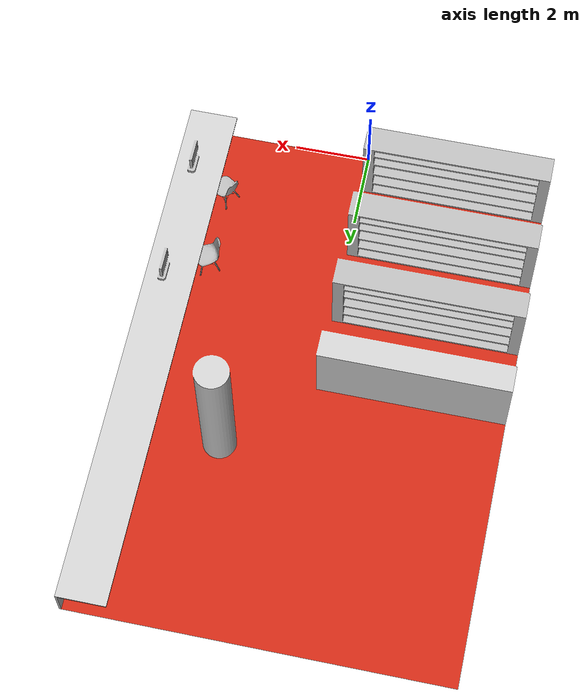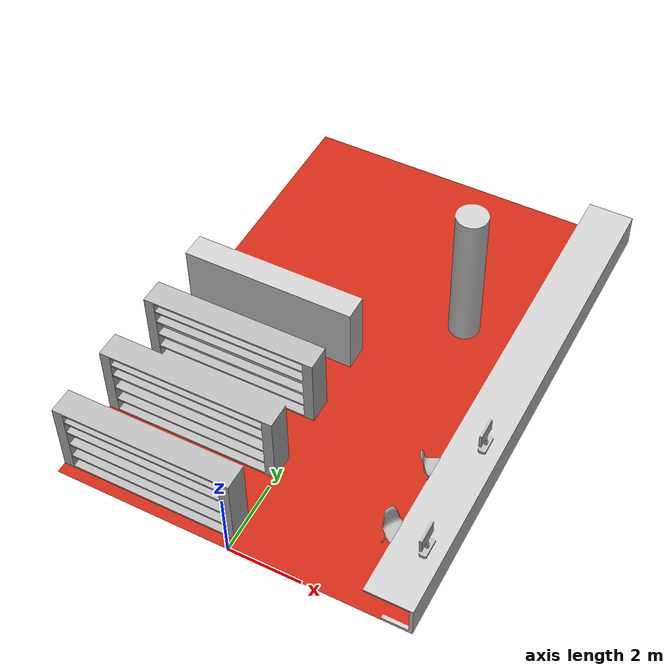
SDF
<?xml version="1.0"?>
<sdf version="1.6">
  <world name="biblioteca">
    <physics type="ode" name="split_unthrottled3">
      <real_time_update_rate>1000.0</real_time_update_rate>
      <max_step_size>0.001</max_step_size>
      <ode>
        <solver>
          <type>quick</type>
          <sor>1.4</sor>
          <thread_position_correction>1</thread_position_correction>
          <island_threads>4</island_threads>
        </solver>
      </ode>
    </physics>
	  <scene>
		  <ambient>1 1 1 1</ambient>
		  <background>0.3 0.7 0.9 1</background>
		  <shadows>0</shadows>
		  <grid>1</grid>
	  </scene>
    <model name="chair1">
      <pose>3.45 2.0 0  0 0 89</pose>
      <static>true</static>
      <link name="body">
        <visual name="visual">
          <geometry>
            <mesh><uri>model://library/chair.dae</uri></mesh>
          </geometry>
        </visual>
        <collision name="collision">
          <geometry>
            <mesh><uri>model://library/chair-collision.dae</uri></mesh>
          </geometry>
        </collision>
      </link>
    </model>
    <model name="chair2">
      <pose>3.45 4.0 0  0 0 90</pose>
      <static>true</static>
      <link name="body">
        <visual name="visual">
          <geometry>
            <mesh><uri>model://library/chair.dae</uri></mesh>
          </geometry>
        </visual>
        <collision name="collision">
          <geometry>
            <mesh><uri>model://library/chair-collision.dae</uri></mesh>
          </geometry>
        </collision>
      </link>
    </model>
    <model name="library">
      <pose>0 0 0  0 0 0</pose>
      <static>true</static>
      <link name="main">
        <visual name="visual">
          <geometry>
            <mesh>
              <uri>model://library/biblioteca.dae</uri>
            </mesh>
          </geometry>
        </visual>
        <collision name="collision">
          <geometry>
            <mesh>
              <uri>model://library/biblioteca-collisioni.dae</uri>
            </mesh>
          </geometry>
        </collision>
      </link>
      <link name="Fan2">
          <pose>5.0154 -0.2952 6.12 0 0 0</pose>
          <light type="directional" name="fan_light">
              <diffuse>1 1 1 1</diffuse>
              <specular>0.3 0.3 0.3 1</specular>
              <attenuation>
                  <range>50</range>
                  <linear>0</linear>
                  <constant>0</constant>
                  <quadratic>0</quadratic>
              </attenuation>
              <cast_shadows>true</cast_shadows>
              <intensity>1.0</intensity>
          </light>
      </link>
      <joint name="world_joint" type="fixed">
          <parent>world</parent>
          <child>main</child>
      </joint>
      <joint name="light_joint" type="fixed">
          <parent>main</parent>
          <child>Fan2</child>
      </joint>
    </model>
  </world>
</sdf>
